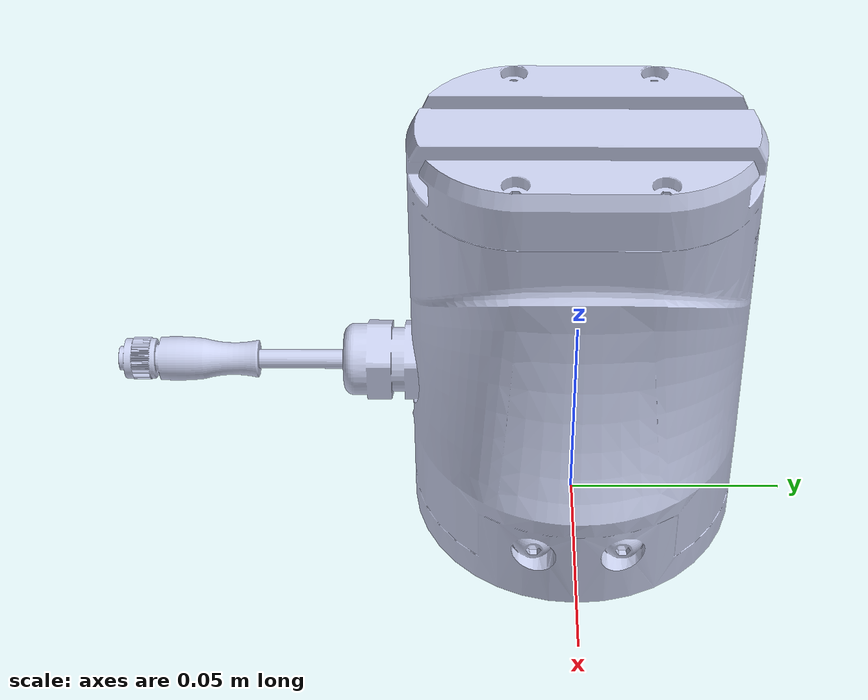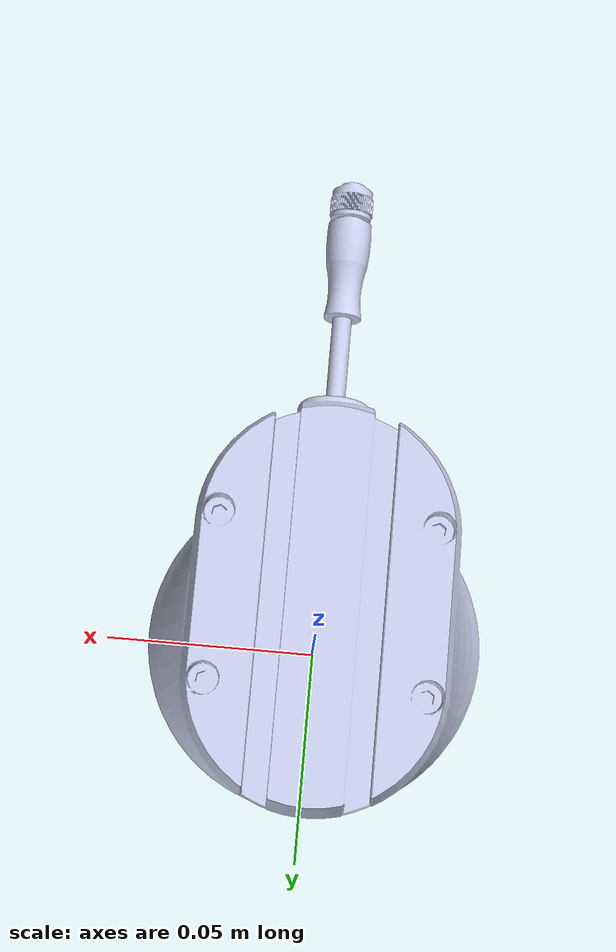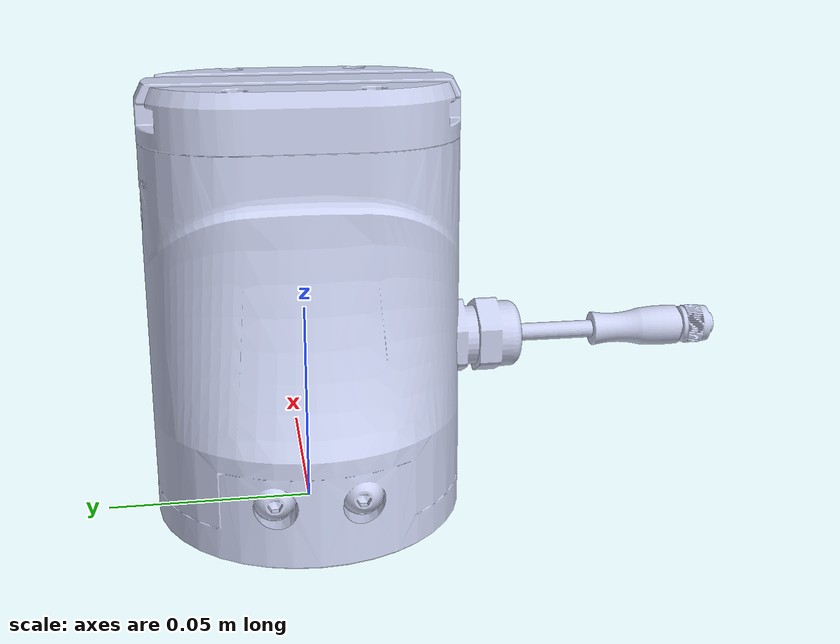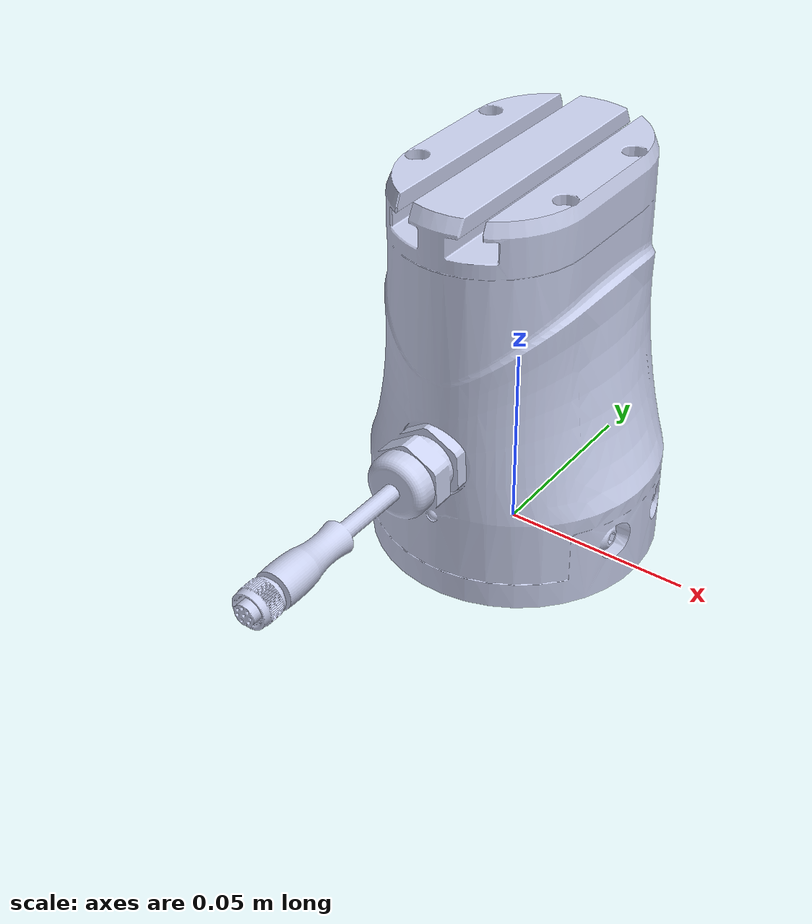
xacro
<?xml version="1.0"?>

<robot name='RG52-050' xmlns:xacro="http://www.ros.org/wiki/xacro">
  <link
    name="gripper_base_link">
    <inertial>
      <origin
        xyz="-1.9286E-07 0.00084505 0.049231"
        rpy="0 0 0" />
      <mass
        value="0.37839" />
      <inertia
        ixx="0.00031"
        ixy="-9.816E-10"
        ixz="1.5187E-10"
        iyy="0.00027075"
        iyz="-2.1562E-07"
        izz="0.00022639" />
    </inertial>
    <visual>
      <origin
        xyz="0 0 0"
        rpy="0 0 0" />
      <geometry>
        <mesh
          filename="package://nova5/meshes/gripper/gripper_base_link.STL" />
      </geometry>
      <material
        name="">
        <color
          rgba="0.79216 0.81961 0.93333 1" />
      </material>
    </visual>
    <collision>
      <origin
        xyz="0 0 0"
        rpy="0 0 0" />
      <geometry>
        <mesh
          filename="package://nova5/meshes/gripper/gripper_base_link.STL" />
      </geometry>
    </collision>
  </link>
</robot>
